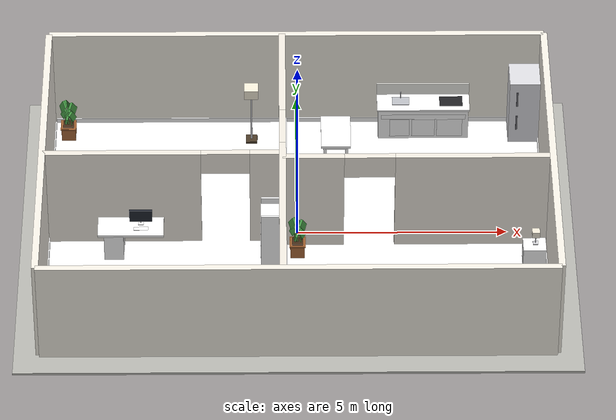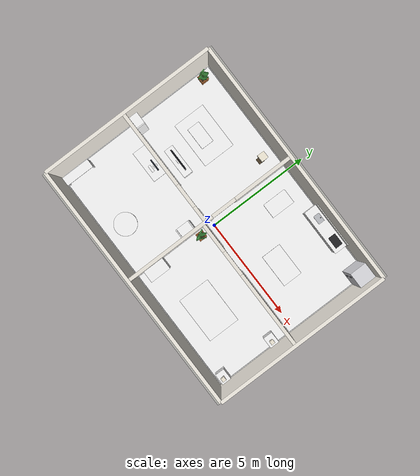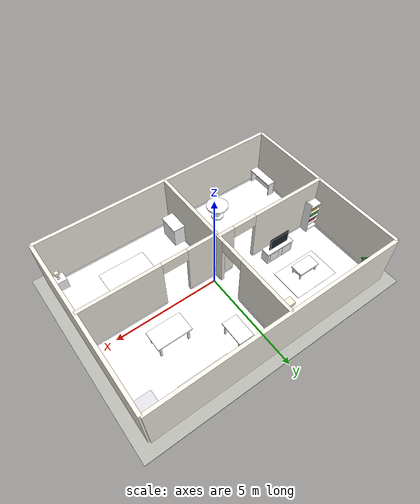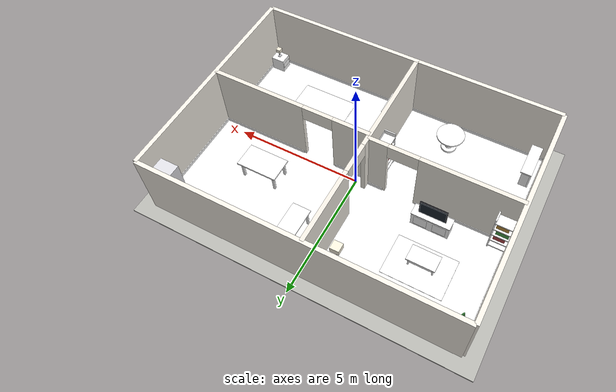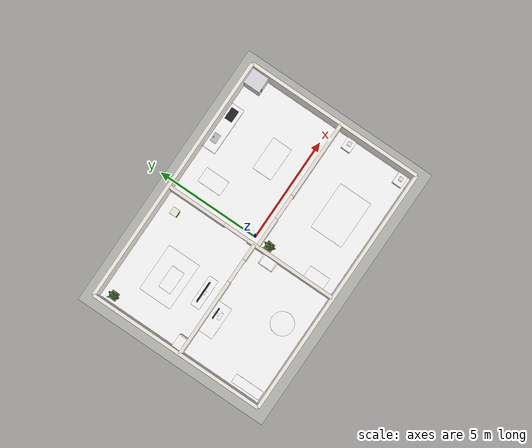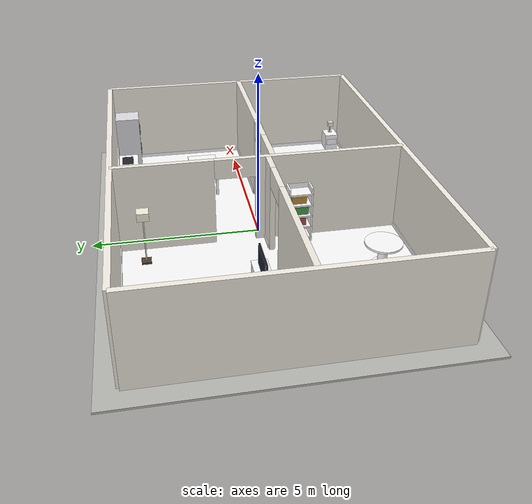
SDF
<sdf version="1.9">
 <world name="house2">
  <include><uri>https://fuel.gazebosim.org/1.0/OpenRobotics/models/Sun</uri></include>
  <gravity>0 0 -9.8</gravity>
  <light name="living_room_light" type="point">
   <pose>-3.40 2.20 2.35 0 0 0</pose>
   <diffuse>1.0 0.92 0.82 1</diffuse>
   <specular>0.18 0.16 0.14 1</specular>
   <attenuation>
    <range>8.0</range>
    <constant>0.6</constant>
    <linear>0.05</linear>
    <quadratic>0.01</quadratic>
   </attenuation>
  </light>
  <light name="kitchen_light" type="point">
   <pose>3.15 2.20 2.35 0 0 0</pose>
   <diffuse>1.0 0.94 0.86 1</diffuse>
   <specular>0.18 0.16 0.14 1</specular>
   <attenuation>
    <range>8.0</range>
    <constant>0.58</constant>
    <linear>0.05</linear>
    <quadratic>0.01</quadratic>
   </attenuation>
  </light>
  <light name="office_light" type="point">
   <pose>-3.60 -2.00 2.35 0 0 0</pose>
   <diffuse>0.96 0.97 1.0 1</diffuse>
   <specular>0.16 0.16 0.18 1</specular>
   <attenuation>
    <range>8.0</range>
    <constant>0.62</constant>
    <linear>0.05</linear>
    <quadratic>0.012</quadratic>
   </attenuation>
  </light>
  <light name="bedroom_light" type="point">
   <pose>3.60 -2.30 2.30 0 0 0</pose>
   <diffuse>0.98 0.92 0.84 1</diffuse>
   <specular>0.18 0.16 0.14 1</specular>
   <attenuation>
    <range>7.0</range>
    <constant>0.64</constant>
    <linear>0.05</linear>
    <quadratic>0.014</quadratic>
   </attenuation>
  </light>
  <include><uri>model://house_shell</uri><name>house_shell</name></include>
  <include><uri>model://rug</uri><name>living_rug</name><pose>-3.55 2.10 0 0 0 0</pose></include>
  <include>
   <uri>model://coffee_table</uri>
   <name>coffee_table_main</name>
   <pose>-3.60 1.95 0 0 0 0</pose>
  </include>
  <include><uri>model://tv_stand</uri><name>tv_stand_main</name><pose>-3.25 0.45 0 0 0 0</pose></include>
  <include><uri>model://bookshelf</uri><name>bookshelf_living</name><pose>-5.64 0.05 0 0 0 1.57</pose></include>
  <include><uri>model://floor_lamp</uri><name>living_lamp</name><pose>-1.10 3.45 0 0 0 0</pose></include>
  <include><uri>model://plant</uri><name>living_plant</name><pose>-5.58 3.62 0 0 0 0</pose></include>
  <include>
   <uri>model://kitchen_counter</uri>
   <name>kitchen_counter_main</name>
   <pose>3.10 3.82 0 0 0 0</pose>
  </include>
  <include><uri>model://fridge</uri><name>fridge_main</name><pose>5.55 3.75 0 0 0 4.71239</pose></include>
  <include><uri>model://table</uri><name>dining_table</name><pose>3.20 1.30 0 0 0 0</pose></include>
  <include>
   <uri>model://small_table</uri>
   <name>kitchen_side_table</name>
   <pose>0.95 2.85 0 0 0 1.57</pose>
  </include>
  <include><uri>model://desk</uri><name>desk_main</name><pose>-3.95 -0.58 0 0 0 0</pose></include>
  <include><uri>model://round_table</uri><name>meeting_table</name><pose>-2.45 -3.10 0 0 0 0</pose></include>
  <include>
   <uri>model://bookshelf</uri>
   <name>bookshelf_office</name>
   <pose>-0.62 -1.10 0 0 0 3.14159</pose>
  </include>
  <include><uri>model://u_desk</uri><name>desk_secondary</name><pose>-5.6 -3.4 0 0 0 0</pose></include>
  <include><uri>model://rug</uri><name>bedroom_rug</name><pose>2.90 -2.55 0 0 0 0</pose></include>
  <include>
   <uri>model://nightstand</uri>
   <name>nightstand_left</name>
   <pose>5.60 -1.10 0 0 0 3.14159</pose>
  </include>
  <include>
   <uri>model://nightstand</uri>
   <name>nightstand_right</name>
   <pose>5.60 -3.80 0 0 0 3.14159</pose>
  </include>
  <include><uri>model://dresser</uri><name>dresser_main</name><pose>-0.04 -3.20 0 0 0 1.57</pose></include>
  <include><uri>model://plant</uri><name>bedroom_plant</name><pose>0.00 -0.75 0 0 0 0</pose></include>
 </world>
</sdf>

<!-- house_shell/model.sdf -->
<sdf version="1.9">
  <model name="house_shell">
    <static>true</static>
    <link name="link">

      <visual name="base_slab_visual">
        <pose>0 0 -0.05 0 0 0</pose>
        <geometry><box><size>13.2 9.7 0.06</size></box></geometry>
        <material>
          <ambient>0.58 0.58 0.57 1</ambient>
          <diffuse>0.72 0.72 0.70 1</diffuse>
        </material>
      </visual>
      <collision name="base_slab_collision">
        <pose>0 0 -0.05 0 0 0</pose>
        <geometry><box><size>13.2 9.7 0.06</size></box></geometry>
      </collision>

      <visual name="floor_visual">
        <pose>0 0 -0.006 0 0 0</pose>
        <geometry><box><size>12.0 8.5 0.012</size></box></geometry>
        <material>
          <ambient>1 1 1 1</ambient>
          <diffuse>1 1 1 1</diffuse>
          <specular>0.05 0.05 0.05 1</specular>
          <pbr>
            <metal>
              <albedo_map>materials/textures/floor_albedo.jpg</albedo_map>
              <normal_map>materials/textures/floor_normal.jpg</normal_map>
              <roughness_map>materials/textures/floor_roughness.jpg</roughness_map>
              <metalness>0.0</metalness>
            </metal>
          </pbr>
        </material>
      </visual>
      <collision name="floor_collision">
        <pose>0 0 -0.006 0 0 0</pose>
        <geometry><box><size>12.0 8.5 0.012</size></box></geometry>
      </collision>

      <visual name="baseboard_west">
        <pose>-5.92 0 0.06 0 0 0</pose>
        <geometry><box><size>0.05 8.10 0.12</size></box></geometry>
        <material><ambient>1 1 1 1</ambient><diffuse>1 1 1 1</diffuse><specular>0.05 0.05 0.05 1</specular><pbr><metal><albedo_map>materials/textures/baseboard_albedo.jpg</albedo_map><normal_map>materials/textures/baseboard_normal.jpg</normal_map><roughness_map>materials/textures/baseboard_roughness.jpg</roughness_map><metalness>0.0</metalness></metal></pbr></material>
      </visual>
      <visual name="baseboard_east">
        <pose>5.92 0 0.06 0 0 0</pose>
        <geometry><box><size>0.05 8.10 0.12</size></box></geometry>
        <material><ambient>1 1 1 1</ambient><diffuse>1 1 1 1</diffuse><specular>0.05 0.05 0.05 1</specular><pbr><metal><albedo_map>materials/textures/baseboard_albedo.jpg</albedo_map><normal_map>materials/textures/baseboard_normal.jpg</normal_map><roughness_map>materials/textures/baseboard_roughness.jpg</roughness_map><metalness>0.0</metalness></metal></pbr></material>
      </visual>
      <visual name="baseboard_north">
        <pose>0 4.17 0.06 0 0 0</pose>
        <geometry><box><size>11.80 0.05 0.12</size></box></geometry>
        <material><ambient>1 1 1 1</ambient><diffuse>1 1 1 1</diffuse><specular>0.05 0.05 0.05 1</specular><pbr><metal><albedo_map>materials/textures/baseboard_albedo.jpg</albedo_map><normal_map>materials/textures/baseboard_normal.jpg</normal_map><roughness_map>materials/textures/baseboard_roughness.jpg</roughness_map><metalness>0.0</metalness></metal></pbr></material>
      </visual>
      <visual name="baseboard_south">
        <pose>0 -4.17 0.06 0 0 0</pose>
        <geometry><box><size>11.80 0.05 0.12</size></box></geometry>
        <material><ambient>1 1 1 1</ambient><diffuse>1 1 1 1</diffuse><specular>0.05 0.05 0.05 1</specular><pbr><metal><albedo_map>materials/textures/baseboard_albedo.jpg</albedo_map><normal_map>materials/textures/baseboard_normal.jpg</normal_map><roughness_map>materials/textures/baseboard_roughness.jpg</roughness_map><metalness>0.0</metalness></metal></pbr></material>
      </visual>
      <visual name="baseboard_mid_lower">
        <pose>-0.27 -2.05 0.06 0 0 0</pose>
        <geometry><box><size>0.05 4.18 0.12</size></box></geometry>
        <material><ambient>1 1 1 1</ambient><diffuse>1 1 1 1</diffuse><specular>0.05 0.05 0.05 1</specular><pbr><metal><albedo_map>materials/textures/baseboard_albedo.jpg</albedo_map><normal_map>materials/textures/baseboard_normal.jpg</normal_map><roughness_map>materials/textures/baseboard_roughness.jpg</roughness_map><metalness>0.0</metalness></metal></pbr></material>
      </visual>
      <visual name="baseboard_mid_upper">
        <pose>-0.27 2.80 0.06 0 0 0</pose>
        <geometry><box><size>0.05 2.68 0.12</size></box></geometry>
        <material><ambient>1 1 1 1</ambient><diffuse>1 1 1 1</diffuse><specular>0.05 0.05 0.05 1</specular><pbr><metal><albedo_map>materials/textures/baseboard_albedo.jpg</albedo_map><normal_map>materials/textures/baseboard_normal.jpg</normal_map><roughness_map>materials/textures/baseboard_roughness.jpg</roughness_map><metalness>0.0</metalness></metal></pbr></material>
      </visual>
      <visual name="baseboard_left_divider_a">
        <pose>-4.14 -0.12 0.06 0 0 0</pose>
        <geometry><box><size>3.55 0.05 0.12</size></box></geometry>
        <material><ambient>1 1 1 1</ambient><diffuse>1 1 1 1</diffuse><specular>0.05 0.05 0.05 1</specular><pbr><metal><albedo_map>materials/textures/baseboard_albedo.jpg</albedo_map><normal_map>materials/textures/baseboard_normal.jpg</normal_map><roughness_map>materials/textures/baseboard_roughness.jpg</roughness_map><metalness>0.0</metalness></metal></pbr></material>
      </visual>
      <visual name="baseboard_left_divider_b">
        <pose>-0.74 -0.12 0.06 0 0 0</pose>
        <geometry><box><size>0.60 0.05 0.12</size></box></geometry>
        <material><ambient>1 1 1 1</ambient><diffuse>1 1 1 1</diffuse><specular>0.05 0.05 0.05 1</specular><pbr><metal><albedo_map>materials/textures/baseboard_albedo.jpg</albedo_map><normal_map>materials/textures/baseboard_normal.jpg</normal_map><roughness_map>materials/textures/baseboard_roughness.jpg</roughness_map><metalness>0.0</metalness></metal></pbr></material>
      </visual>
      <visual name="baseboard_right_divider_a">
        <pose>0.38 -0.27 0.06 0 0 0</pose>
        <geometry><box><size>1.28 0.05 0.12</size></box></geometry>
        <material><ambient>1 1 1 1</ambient><diffuse>1 1 1 1</diffuse><specular>0.05 0.05 0.05 1</specular><pbr><metal><albedo_map>materials/textures/baseboard_albedo.jpg</albedo_map><normal_map>materials/textures/baseboard_normal.jpg</normal_map><roughness_map>materials/textures/baseboard_roughness.jpg</roughness_map><metalness>0.0</metalness></metal></pbr></material>
      </visual>
      <visual name="baseboard_right_divider_b">
        <pose>4.15 -0.27 0.06 0 0 0</pose>
        <geometry><box><size>3.54 0.05 0.12</size></box></geometry>
        <material><ambient>1 1 1 1</ambient><diffuse>1 1 1 1</diffuse><specular>0.05 0.05 0.05 1</specular><pbr><metal><albedo_map>materials/textures/baseboard_albedo.jpg</albedo_map><normal_map>materials/textures/baseboard_normal.jpg</normal_map><roughness_map>materials/textures/baseboard_roughness.jpg</roughness_map><metalness>0.0</metalness></metal></pbr></material>
      </visual>

      <!-- outer walls -->
      <collision name="wall_west">
        <pose>-6.0 0.0 1.35 0 0 0</pose>
        <geometry><box><size>0.16 8.5 2.7</size></box></geometry>
      </collision>
      <visual name="wall_west_visual">
        <pose>-6.0 0.0 1.35 0 0 0</pose>
        <geometry><box><size>0.16 8.5 2.7</size></box></geometry>
        <material><ambient>0.90 0.88 0.84 1</ambient><diffuse>0.97 0.95 0.91 1</diffuse></material>
      </visual>

      <collision name="wall_east">
        <pose>6.0 0.0 1.35 0 0 0</pose>
        <geometry><box><size>0.16 8.5 2.7</size></box></geometry>
      </collision>
      <visual name="wall_east_visual">
        <pose>6.0 0.0 1.35 0 0 0</pose>
        <geometry><box><size>0.16 8.5 2.7</size></box></geometry>
        <material><ambient>0.90 0.88 0.84 1</ambient><diffuse>0.97 0.95 0.91 1</diffuse></material>
      </visual>

      <collision name="wall_north">
        <pose>0.0 4.25 1.35 0 0 0</pose>
        <geometry><box><size>12.0 0.16 2.7</size></box></geometry>
      </collision>
      <visual name="wall_north_visual">
        <pose>0.0 4.25 1.35 0 0 0</pose>
        <geometry><box><size>12.0 0.16 2.7</size></box></geometry>
        <material><ambient>0.90 0.88 0.84 1</ambient><diffuse>0.97 0.95 0.91 1</diffuse></material>
      </visual>

      <collision name="wall_south">
        <pose>0.0 -4.25 1.35 0 0 0</pose>
        <geometry><box><size>12.0 0.16 2.7</size></box></geometry>
      </collision>
      <visual name="wall_south_visual">
        <pose>0.0 -4.25 1.35 0 0 0</pose>
        <geometry><box><size>12.0 0.16 2.7</size></box></geometry>
        <material><ambient>0.90 0.88 0.84 1</ambient><diffuse>0.97 0.95 0.91 1</diffuse></material>
      </visual>

      <!-- center hall wall -->
      <collision name="mid_wall_bottom">
        <pose>-0.35 -2.05 1.35 0 0 0</pose>
        <geometry><box><size>0.16 4.40 2.7</size></box></geometry>
      </collision>
      <visual name="mid_wall_bottom_visual">
        <pose>-0.35 -2.05 1.35 0 0 0</pose>
        <geometry><box><size>0.16 4.40 2.7</size></box></geometry>
        <material><ambient>0.88 0.86 0.82 1</ambient><diffuse>0.95 0.93 0.89 1</diffuse></material>
      </visual>

      <collision name="mid_wall_top">
        <pose>-0.35 2.80 1.35 0 0 0</pose>
        <geometry><box><size>0.16 2.90 2.7</size></box></geometry>
      </collision>
      <visual name="mid_wall_top_visual">
        <pose>-0.35 2.80 1.35 0 0 0</pose>
        <geometry><box><size>0.16 2.90 2.7</size></box></geometry>
        <material><ambient>0.88 0.86 0.82 1</ambient><diffuse>0.95 0.93 0.89 1</diffuse></material>
      </visual>

      <collision name="mid_door_header">
        <pose>-0.35 0.75 2.40 0 0 0</pose>
        <geometry><box><size>0.16 1.20 0.60</size></box></geometry>
      </collision>
      <visual name="mid_door_header_visual">
        <pose>-0.35 0.75 2.40 0 0 0</pose>
        <geometry><box><size>0.16 1.20 0.60</size></box></geometry>
        <material><ambient>0.88 0.86 0.82 1</ambient><diffuse>0.95 0.93 0.89 1</diffuse></material>
      </visual>

      <!-- left-side room divider -->
      <collision name="left_divider_left">
        <pose>-4.1375 -0.20 1.35 0 0 0</pose>
        <geometry><box><size>3.725 0.16 2.7</size></box></geometry>
      </collision>
      <visual name="left_divider_left_visual">
        <pose>-4.1375 -0.20 1.35 0 0 0</pose>
        <geometry><box><size>3.725 0.16 2.7</size></box></geometry>
        <material><ambient>0.88 0.86 0.82 1</ambient><diffuse>0.95 0.93 0.89 1</diffuse></material>
      </visual>

      <collision name="left_divider_right">
        <pose>-0.7375 -0.20 1.35 0 0 0</pose>
        <geometry><box><size>0.775 0.16 2.7</size></box></geometry>
      </collision>
      <visual name="left_divider_right_visual">
        <pose>-0.7375 -0.20 1.35 0 0 0</pose>
        <geometry><box><size>0.775 0.16 2.7</size></box></geometry>
        <material><ambient>0.88 0.86 0.82 1</ambient><diffuse>0.95 0.93 0.89 1</diffuse></material>
      </visual>

      <collision name="left_door_header">
        <pose>-1.70 -0.20 2.40 0 0 0</pose>
        <geometry><box><size>1.15 0.16 0.60</size></box></geometry>
      </collision>
      <visual name="left_door_header_visual">
        <pose>-1.70 -0.20 2.40 0 0 0</pose>
        <geometry><box><size>1.15 0.16 0.60</size></box></geometry>
        <material><ambient>0.88 0.86 0.82 1</ambient><diffuse>0.95 0.93 0.89 1</diffuse></material>
      </visual>

      <!-- bedroom divider -->
      <collision name="right_divider_left">
        <pose>0.375 -0.35 1.35 0 0 0</pose>
        <geometry><box><size>1.45 0.16 2.7</size></box></geometry>
      </collision>
      <visual name="right_divider_left_visual">
        <pose>0.375 -0.35 1.35 0 0 0</pose>
        <geometry><box><size>1.45 0.16 2.7</size></box></geometry>
        <material><ambient>0.88 0.86 0.82 1</ambient><diffuse>0.95 0.93 0.89 1</diffuse></material>
      </visual>

      <collision name="right_divider_right">
        <pose>4.15 -0.35 1.35 0 0 0</pose>
        <geometry><box><size>3.70 0.16 2.7</size></box></geometry>
      </collision>
      <visual name="right_divider_right_visual">
        <pose>4.15 -0.35 1.35 0 0 0</pose>
        <geometry><box><size>3.70 0.16 2.7</size></box></geometry>
        <material><ambient>0.88 0.86 0.82 1</ambient><diffuse>0.95 0.93 0.89 1</diffuse></material>
      </visual>

      <collision name="right_door_header">
        <pose>1.70 -0.35 2.40 0 0 0</pose>
        <geometry><box><size>1.20 0.16 0.60</size></box></geometry>
      </collision>
      <visual name="right_door_header_visual">
        <pose>1.70 -0.35 2.40 0 0 0</pose>
        <geometry><box><size>1.20 0.16 0.60</size></box></geometry>
        <material><ambient>0.88 0.86 0.82 1</ambient><diffuse>0.95 0.93 0.89 1</diffuse></material>
      </visual>

    </link>
  </model>
</sdf>

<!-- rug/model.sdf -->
<sdf version="1.9">
  <model name="rug">
    <static>true</static>
    <link name="body">

      <visual name="rug_base">
        <pose>0 0 0.005 0 0 0</pose>
        <geometry><box><size>2.30 1.60 0.01</size></box></geometry>
        <material>
          <ambient>1 1 1 1</ambient>
          <diffuse>1 1 1 1</diffuse>
          <specular>0.01 0.01 0.01 1</specular>
          <pbr>
            <metal>
              <albedo_map>materials/textures/carpet_albedo.jpg</albedo_map>
              <normal_map>materials/textures/carpet_normal.jpg</normal_map>
              <roughness_map>materials/textures/carpet_roughness.jpg</roughness_map>
              <metalness>0.0</metalness>
            </metal>
          </pbr>
        </material>
      </visual>
    </link>
  </model>
</sdf>

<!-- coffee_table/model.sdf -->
<sdf version="1.9">
  <model name="coffee_table">
    <static>true</static>
    <link name="body">

      <collision name="top_collision">
        <pose>0 0 0.42 0 0 0</pose>
        <geometry><box><size>1.08 0.62 0.06</size></box></geometry>
      </collision>
      <visual name="top_visual">
        <pose>0 0 0.42 0 0 0</pose>
        <geometry><box><size>1.08 0.62 0.06</size></box></geometry>
        <material>
          <ambient>1 1 1 1</ambient>
          <diffuse>1 1 1 1</diffuse>
          <specular>0.05 0.05 0.05 1</specular>
          <pbr>
            <metal>
              <albedo_map>materials/textures/wood_albedo.png</albedo_map>
              <normal_map>materials/textures/wood_normal.png</normal_map>
              <roughness_map>materials/textures/wood_roughness.png</roughness_map>
              <metalness>0.0</metalness>
            </metal>
          </pbr>
        </material>
      </visual>

      <collision name="shelf_collision">
        <pose>0 0 0.17 0 0 0</pose>
        <geometry><box><size>0.90 0.46 0.035</size></box></geometry>
      </collision>
      <visual name="shelf_visual">
        <pose>0 0 0.17 0 0 0</pose>
        <geometry><box><size>0.90 0.46 0.035</size></box></geometry>
        <material>
          <ambient>1 1 1 1</ambient>
          <diffuse>1 1 1 1</diffuse>
          <specular>0.05 0.05 0.05 1</specular>
          <pbr>
            <metal>
              <albedo_map>materials/textures/wood_albedo.png</albedo_map>
              <normal_map>materials/textures/wood_normal.png</normal_map>
              <roughness_map>materials/textures/wood_roughness.png</roughness_map>
              <metalness>0.0</metalness>
            </metal>
          </pbr>
        </material>
      </visual>

      <collision name="leg_fl">
        <pose>0.45 0.23 0.21 0 0 0</pose>
        <geometry><box><size>0.055 0.055 0.43</size></box></geometry>
      </collision>
      <collision name="leg_fr">
        <pose>0.45 -0.23 0.21 0 0 0</pose>
        <geometry><box><size>0.055 0.055 0.43</size></box></geometry>
      </collision>
      <collision name="leg_bl">
        <pose>-0.45 0.23 0.21 0 0 0</pose>
        <geometry><box><size>0.055 0.055 0.43</size></box></geometry>
      </collision>
      <collision name="leg_br">
        <pose>-0.45 -0.23 0.21 0 0 0</pose>
        <geometry><box><size>0.055 0.055 0.43</size></box></geometry>
      </collision>

      <visual name="leg_fl_visual">
        <pose>0.45 0.23 0.21 0 0 0</pose>
        <geometry><box><size>0.055 0.055 0.43</size></box></geometry>
        <material><ambient>1 1 1 1</ambient><diffuse>1 1 1 1</diffuse><specular>0.05 0.05 0.05 1</specular><pbr><metal><albedo_map>materials/textures/wood_albedo.png</albedo_map><normal_map>materials/textures/wood_normal.png</normal_map><roughness_map>materials/textures/wood_roughness.png</roughness_map><metalness>0.0</metalness></metal></pbr></material>
      </visual>
      <visual name="leg_fr_visual">
        <pose>0.45 -0.23 0.21 0 0 0</pose>
        <geometry><box><size>0.055 0.055 0.43</size></box></geometry>
        <material><ambient>1 1 1 1</ambient><diffuse>1 1 1 1</diffuse><specular>0.05 0.05 0.05 1</specular><pbr><metal><albedo_map>materials/textures/wood_albedo.png</albedo_map><normal_map>materials/textures/wood_normal.png</normal_map><roughness_map>materials/textures/wood_roughness.png</roughness_map><metalness>0.0</metalness></metal></pbr></material>
      </visual>
      <visual name="leg_bl_visual">
        <pose>-0.45 0.23 0.21 0 0 0</pose>
        <geometry><box><size>0.055 0.055 0.43</size></box></geometry>
        <material><ambient>1 1 1 1</ambient><diffuse>1 1 1 1</diffuse><specular>0.05 0.05 0.05 1</specular><pbr><metal><albedo_map>materials/textures/wood_albedo.png</albedo_map><normal_map>materials/textures/wood_normal.png</normal_map><roughness_map>materials/textures/wood_roughness.png</roughness_map><metalness>0.0</metalness></metal></pbr></material>
      </visual>
      <visual name="leg_br_visual">
        <pose>-0.45 -0.23 0.21 0 0 0</pose>
        <geometry><box><size>0.055 0.055 0.43</size></box></geometry>
        <material><ambient>1 1 1 1</ambient><diffuse>1 1 1 1</diffuse><specular>0.05 0.05 0.05 1</specular><pbr><metal><albedo_map>materials/textures/wood_albedo.png</albedo_map><normal_map>materials/textures/wood_normal.png</normal_map><roughness_map>materials/textures/wood_roughness.png</roughness_map><metalness>0.0</metalness></metal></pbr></material>
      </visual>

    </link>
  </model>
</sdf>

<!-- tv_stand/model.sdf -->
<sdf version="1.9">
  <model name="tv_stand">
    <static>true</static>
    <link name="body">

      <collision name="cabinet_collision">
        <pose>0 0 0.31 0 0 0</pose>
        <geometry><box><size>1.44 0.44 0.64</size></box></geometry>
      </collision>
      <collision name="top_slab_collision">
        <pose>0 0 0.63 0 0 0</pose>
        <geometry><box><size>1.48 0.46 0.04</size></box></geometry>
      </collision>
      <collision name="center_shelf_collision">
        <pose>0 0 0.28 0 0 0</pose>
        <geometry><box><size>0.34 0.36 0.03</size></box></geometry>
      </collision>
      <collision name="left_door_collision">
        <pose>-0.36 0.22 0.33 0 0 0</pose>
        <geometry><box><size>0.50 0.03 0.48</size></box></geometry>
      </collision>
      <collision name="right_door_collision">
        <pose>0.36 0.22 0.33 0 0 0</pose>
        <geometry><box><size>0.50 0.03 0.48</size></box></geometry>
      </collision>
      <collision name="tv_collision">
        <pose>0 0.03 1.00 0 0 0</pose>
        <geometry><box><size>1.04 0.05 0.64</size></box></geometry>
      </collision>
      <collision name="tv_base_collision">
        <pose>0 0 0.76 0 0 0</pose>
        <geometry><box><size>0.20 0.12 0.04</size></box></geometry>
      </collision>
      <visual name="cabinet_visual">
        <pose>0 0 0.31 0 0 0</pose>
        <geometry><box><size>1.44 0.44 0.64</size></box></geometry>
        <material>
          <ambient>1 1 1 1</ambient>
          <diffuse>1 1 1 1</diffuse>
          <specular>0.05 0.05 0.05 1</specular>
          <pbr>
            <metal>
              <albedo_map>materials/textures/wood_albedo.jpg</albedo_map>
              <normal_map>materials/textures/wood_normal.jpg</normal_map>
              <roughness_map>materials/textures/wood_roughness.jpg</roughness_map>
              <metalness>0.0</metalness>
            </metal>
          </pbr>
        </material>
      </visual>

      <visual name="top_slab">
        <pose>0 0 0.63 0 0 0</pose>
        <geometry><box><size>1.48 0.46 0.04</size></box></geometry>
        <material><ambient>1 1 1 1</ambient><diffuse>1 1 1 1</diffuse><specular>0.05 0.05 0.05 1</specular><pbr><metal><albedo_map>materials/textures/wood_albedo.jpg</albedo_map><normal_map>materials/textures/wood_normal.jpg</normal_map><roughness_map>materials/textures/wood_roughness.jpg</roughness_map><metalness>0.0</metalness></metal></pbr></material>
      </visual>

      <visual name="left_door">
        <pose>-0.36 0.22 0.33 0 0 0</pose>
        <geometry><box><size>0.50 0.03 0.48</size></box></geometry>
        <material><ambient>1 1 1 1</ambient><diffuse>1 1 1 1</diffuse><specular>0.05 0.05 0.05 1</specular><pbr><metal><albedo_map>materials/textures/wood_albedo.jpg</albedo_map><normal_map>materials/textures/wood_normal.jpg</normal_map><roughness_map>materials/textures/wood_roughness.jpg</roughness_map><metalness>0.0</metalness></metal></pbr></material>
      </visual>
      <visual name="right_door">
        <pose>0.36 0.22 0.33 0 0 0</pose>
        <geometry><box><size>0.50 0.03 0.48</size></box></geometry>
        <material><ambient>1 1 1 1</ambient><diffuse>1 1 1 1</diffuse><specular>0.05 0.05 0.05 1</specular><pbr><metal><albedo_map>materials/textures/wood_albedo.jpg</albedo_map><normal_map>materials/textures/wood_normal.jpg</normal_map><roughness_map>materials/textures/wood_roughness.jpg</roughness_map><metalness>0.0</metalness></metal></pbr></material>
      </visual>
      <visual name="center_shelf">
        <pose>0 0 0.28 0 0 0</pose>
        <geometry><box><size>0.34 0.36 0.03</size></box></geometry>
        <material><ambient>1 1 1 1</ambient><diffuse>1 1 1 1</diffuse><specular>0.05 0.05 0.05 1</specular><pbr><metal><albedo_map>materials/textures/wood_albedo.jpg</albedo_map><normal_map>materials/textures/wood_normal.jpg</normal_map><roughness_map>materials/textures/wood_roughness.jpg</roughness_map><metalness>0.0</metalness></metal></pbr></material>
      </visual>

      <visual name="tv_frame">
        <pose>0 0.03 1.00 0 0 0</pose>
        <geometry><box><size>1.04 0.05 0.64</size></box></geometry>
        <material><ambient>0.05 0.05 0.06 1</ambient><diffuse>0.10 0.10 0.12 1</diffuse></material>
      </visual>
      <visual name="tv_screen">
        <pose>0 0.06 1.00 0 0 0</pose>
        <geometry><box><size>0.96 0.02 0.56</size></box></geometry>
        <material><ambient>0.05 0.07 0.09 1</ambient><diffuse>0.10 0.14 0.18 1</diffuse></material>
      </visual>
      <visual name="tv_base">
        <pose>0 0 0.76 0 0 0</pose>
        <geometry><box><size>0.20 0.12 0.04</size></box></geometry>
        <material><ambient>1 1 1 1</ambient><diffuse>1 1 1 1</diffuse><specular>0.12 0.12 0.12 1</specular><pbr><metal><albedo_map>materials/textures/metal_albedo.jpg</albedo_map><normal_map>materials/textures/metal_normal.jpg</normal_map><roughness_map>materials/textures/metal_roughness.jpg</roughness_map><metalness_map>materials/textures/metal_metalness.jpg</metalness_map></metal></pbr></material>
      </visual>

    </link>
  </model>
</sdf>

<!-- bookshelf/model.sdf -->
<sdf version="1.9">
  <model name="bookshelf">
    <static>true</static>
    <link name="body">

      <collision name="left_side_collision">
        <pose>0 0.33 0.88 0 0 0</pose>
        <geometry><box><size>0.48 0.05 1.78</size></box></geometry>
      </collision>
      <collision name="right_side_collision">
        <pose>0 -0.33 0.88 0 0 0</pose>
        <geometry><box><size>0.48 0.05 1.78</size></box></geometry>
      </collision>
      <collision name="back_collision">
        <pose>-0.21 0 0.88 0 0 0</pose>
        <geometry><box><size>0.05 0.68 1.78</size></box></geometry>
      </collision>

      <collision name="bottom_shelf_collision">
        <pose>0.03 0 0.14 0 0 0</pose>
        <geometry><box><size>0.44 0.68 0.05</size></box></geometry>
      </collision>
      <collision name="mid1_shelf_collision">
        <pose>0.03 0 0.50 0 0 0</pose>
        <geometry><box><size>0.44 0.68 0.05</size></box></geometry>
      </collision>
      <collision name="mid2_shelf_collision">
        <pose>0.03 0 0.86 0 0 0</pose>
        <geometry><box><size>0.44 0.68 0.05</size></box></geometry>
      </collision>
      <collision name="mid3_shelf_collision">
        <pose>0.03 0 1.22 0 0 0</pose>
        <geometry><box><size>0.44 0.68 0.05</size></box></geometry>
      </collision>
      <collision name="top_shelf_collision">
        <pose>0.03 0 1.58 0 0 0</pose>
        <geometry><box><size>0.44 0.68 0.05</size></box></geometry>
      </collision>

      <collision name="books_2_collision">
        <pose>0.09 -0.03 0.66 0 0 0</pose>
        <geometry><box><size>0.20 0.42 0.24</size></box></geometry>
      </collision>
      <collision name="books_3_collision">
        <pose>0.09 0.02 1.02 0 0 0</pose>
        <geometry><box><size>0.20 0.46 0.24</size></box></geometry>
      </collision>
      <collision name="books_4_collision">
        <pose>0.09 -0.04 1.38 0 0 0</pose>
        <geometry><box><size>0.20 0.44 0.22</size></box></geometry>
      </collision>

      <visual name="left_side_visual">
        <pose>0 0.33 0.88 0 0 0</pose>
        <geometry><box><size>0.48 0.05 1.78</size></box></geometry>
        <material><ambient>1 1 1 1</ambient><diffuse>1 1 1 1</diffuse><specular>0.05 0.05 0.05 1</specular><pbr><metal><albedo_map>materials/textures/wood_albedo.jpg</albedo_map><normal_map>materials/textures/wood_normal.jpg</normal_map><roughness_map>materials/textures/wood_roughness.jpg</roughness_map><metalness>0.0</metalness></metal></pbr></material>
      </visual>
      <visual name="right_side_visual">
        <pose>0 -0.33 0.88 0 0 0</pose>
        <geometry><box><size>0.48 0.05 1.78</size></box></geometry>
        <material><ambient>1 1 1 1</ambient><diffuse>1 1 1 1</diffuse><specular>0.05 0.05 0.05 1</specular><pbr><metal><albedo_map>materials/textures/wood_albedo.jpg</albedo_map><normal_map>materials/textures/wood_normal.jpg</normal_map><roughness_map>materials/textures/wood_roughness.jpg</roughness_map><metalness>0.0</metalness></metal></pbr></material>
      </visual>
      <visual name="back_visual">
        <pose>-0.21 0 0.88 0 0 0</pose>
        <geometry><box><size>0.05 0.68 1.78</size></box></geometry>
        <material><ambient>1 1 1 1</ambient><diffuse>1 1 1 1</diffuse><specular>0.05 0.05 0.05 1</specular><pbr><metal><albedo_map>materials/textures/wood_albedo.jpg</albedo_map><normal_map>materials/textures/wood_normal.jpg</normal_map><roughness_map>materials/textures/wood_roughness.jpg</roughness_map><metalness>0.0</metalness></metal></pbr></material>
      </visual>

      <visual name="bottom_shelf_visual">
        <pose>0.03 0 0.14 0 0 0</pose>
        <geometry><box><size>0.44 0.68 0.05</size></box></geometry>
        <material><ambient>1 1 1 1</ambient><diffuse>1 1 1 1</diffuse><specular>0.05 0.05 0.05 1</specular><pbr><metal><albedo_map>materials/textures/wood_albedo.jpg</albedo_map><normal_map>materials/textures/wood_normal.jpg</normal_map><roughness_map>materials/textures/wood_roughness.jpg</roughness_map><metalness>0.0</metalness></metal></pbr></material>
      </visual>
      <visual name="mid1_shelf_visual">
        <pose>0.03 0 0.50 0 0 0</pose>
        <geometry><box><size>0.44 0.68 0.05</size></box></geometry>
        <material><ambient>1 1 1 1</ambient><diffuse>1 1 1 1</diffuse><specular>0.05 0.05 0.05 1</specular><pbr><metal><albedo_map>materials/textures/wood_albedo.jpg</albedo_map><normal_map>materials/textures/wood_normal.jpg</normal_map><roughness_map>materials/textures/wood_roughness.jpg</roughness_map><metalness>0.0</metalness></metal></pbr></material>
      </visual>
      <visual name="mid2_shelf_visual">
        <pose>0.03 0 0.86 0 0 0</pose>
        <geometry><box><size>0.44 0.68 0.05</size></box></geometry>
        <material><ambient>1 1 1 1</ambient><diffuse>1 1 1 1</diffuse><specular>0.05 0.05 0.05 1</specular><pbr><metal><albedo_map>materials/textures/wood_albedo.jpg</albedo_map><normal_map>materials/textures/wood_normal.jpg</normal_map><roughness_map>materials/textures/wood_roughness.jpg</roughness_map><metalness>0.0</metalness></metal></pbr></material>
      </visual>
      <visual name="mid3_shelf_visual">
        <pose>0.03 0 1.22 0 0 0</pose>
        <geometry><box><size>0.44 0.68 0.05</size></box></geometry>
        <material><ambient>1 1 1 1</ambient><diffuse>1 1 1 1</diffuse><specular>0.05 0.05 0.05 1</specular><pbr><metal><albedo_map>materials/textures/wood_albedo.jpg</albedo_map><normal_map>materials/textures/wood_normal.jpg</normal_map><roughness_map>materials/textures/wood_roughness.jpg</roughness_map><metalness>0.0</metalness></metal></pbr></material>
      </visual>
      <visual name="top_shelf_visual">
        <pose>0.03 0 1.58 0 0 0</pose>
        <geometry><box><size>0.44 0.68 0.05</size></box></geometry>
        <material><ambient>1 1 1 1</ambient><diffuse>1 1 1 1</diffuse><specular>0.05 0.05 0.05 1</specular><pbr><metal><albedo_map>materials/textures/wood_albedo.jpg</albedo_map><normal_map>materials/textures/wood_normal.jpg</normal_map><roughness_map>materials/textures/wood_roughness.jpg</roughness_map><metalness>0.0</metalness></metal></pbr></material>
      </visual>

      <!-- simple books -->
      <visual name="books_2">
        <pose>0.09 -0.03 0.66 0 0 0</pose>
        <geometry><box><size>0.20 0.42 0.24</size></box></geometry>
        <material><ambient>0.45 0.18 0.18 1</ambient><diffuse>0.70 0.28 0.28 1</diffuse></material>
      </visual>
      <visual name="books_3">
        <pose>0.09 0.02 1.02 0 0 0</pose>
        <geometry><box><size>0.20 0.46 0.24</size></box></geometry>
        <material><ambient>0.18 0.40 0.18 1</ambient><diffuse>0.28 0.62 0.28 1</diffuse></material>
      </visual>
      <visual name="books_4">
        <pose>0.09 -0.04 1.38 0 0 0</pose>
        <geometry><box><size>0.20 0.44 0.22</size></box></geometry>
        <material><ambient>0.48 0.36 0.14 1</ambient><diffuse>0.74 0.56 0.22 1</diffuse></material>
      </visual>

    </link>
  </model>
</sdf>

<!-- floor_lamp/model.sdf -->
<sdf version="1.9">
  <model name="floor_lamp">
    <static>true</static>
    <link name="body">

      <collision name="base_collision">
        <pose>0 0 0.03 0 0 0</pose>
        <geometry><box><size>0.28 0.28 0.06</size></box></geometry>
      </collision>
      <collision name="stem_collision">
        <pose>0 0 0.80 0 0 0</pose>
        <geometry><box><size>0.04 0.04 1.50</size></box></geometry>
      </collision>
      <collision name="shade_collision">
        <pose>0 0 1.55 0 0 0</pose>
        <geometry><box><size>0.34 0.34 0.24</size></box></geometry>
      </collision>
      <visual name="base_visual">
        <pose>0 0 0.03 0 0 0</pose>
        <geometry><box><size>0.28 0.28 0.06</size></box></geometry>
        <material>
          <ambient>0.20 0.16 0.11 1</ambient>
          <diffuse>0.30 0.24 0.16 1</diffuse>
        </material>
      </visual>

      <visual name="stem_visual">
        <pose>0 0 0.80 0 0 0</pose>
        <geometry><box><size>0.04 0.04 1.50</size></box></geometry>
        <material><ambient>0.62 0.62 0.63 1</ambient><diffuse>0.78 0.78 0.80 1</diffuse></material>
      </visual>
      <visual name="shade_visual">
        <pose>0 0 1.55 0 0 0</pose>
        <geometry><box><size>0.34 0.34 0.24</size></box></geometry>
        <material><ambient>0.92 0.89 0.80 1</ambient><diffuse>0.98 0.95 0.87 1</diffuse></material>
      </visual>

    </link>
  </model>
</sdf>

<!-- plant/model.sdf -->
<sdf version="1.9">
  <model name="plant">
    <static>true</static>
    <link name="body">

      <collision name="pot_collision">
        <pose>0 0 0.18 0 0 0</pose>
        <geometry><box><size>0.34 0.34 0.38</size></box></geometry>
      </collision>
      <collision name="pot_lip_collision">
        <pose>0 0 0.35 0 0 0</pose>
        <geometry><box><size>0.38 0.38 0.03</size></box></geometry>
      </collision>
      <collision name="stem_main_collision">
        <pose>0 0 0.64 0 0 0</pose>
        <geometry><box><size>0.04 0.04 0.52</size></box></geometry>
      </collision>
      <collision name="stem_left_collision">
        <pose>-0.06 0.02 0.58 0.18 0.14 0</pose>
        <geometry><box><size>0.03 0.03 0.34</size></box></geometry>
      </collision>
      <collision name="stem_right_collision">
        <pose>0.06 -0.02 0.58 -0.18 -0.14 0</pose>
        <geometry><box><size>0.03 0.03 0.34</size></box></geometry>
      </collision>
      <collision name="leaf_left_top_collision">
        <pose>-0.12 0.03 0.92 0.65 0 0.40</pose>
        <geometry><box><size>0.05 0.18 0.42</size></box></geometry>
      </collision>
      <collision name="leaf_right_top_collision">
        <pose>0.12 -0.03 0.92 0.65 0 -0.40</pose>
        <geometry><box><size>0.05 0.18 0.42</size></box></geometry>
      </collision>
      <collision name="leaf_front_top_collision">
        <pose>0 0.12 0.88 0.52 -0.34 0</pose>
        <geometry><box><size>0.05 0.16 0.36</size></box></geometry>
      </collision>
      <collision name="leaf_back_top_collision">
        <pose>0 -0.12 0.88 0.52 0.34 0</pose>
        <geometry><box><size>0.05 0.16 0.36</size></box></geometry>
      </collision>
      <collision name="leaf_left_low_collision">
        <pose>-0.10 0.06 0.68 0.48 0 0.62</pose>
        <geometry><box><size>0.05 0.15 0.30</size></box></geometry>
      </collision>
      <collision name="leaf_right_low_collision">
        <pose>0.10 -0.06 0.68 0.48 0 -0.62</pose>
        <geometry><box><size>0.05 0.15 0.30</size></box></geometry>
      </collision>
      <collision name="leaf_front_low_collision">
        <pose>0.03 0.11 0.62 0.42 -0.22 0.15</pose>
        <geometry><box><size>0.05 0.14 0.26</size></box></geometry>
      </collision>
      <collision name="leaf_back_low_collision">
        <pose>-0.03 -0.11 0.62 0.42 0.22 -0.15</pose>
        <geometry><box><size>0.05 0.14 0.26</size></box></geometry>
      </collision>
      <visual name="pot_visual">
        <pose>0 0 0.18 0 0 0</pose>
        <geometry><box><size>0.34 0.34 0.38</size></box></geometry>
        <material>
          <ambient>0.50 0.31 0.16 1</ambient>
          <diffuse>0.68 0.42 0.22 1</diffuse>
        </material>
      </visual>
      <visual name="pot_lip">
        <pose>0 0 0.35 0 0 0</pose>
        <geometry><box><size>0.38 0.38 0.03</size></box></geometry>
        <material><ambient>0.56 0.35 0.18 1</ambient><diffuse>0.74 0.46 0.25 1</diffuse></material>
      </visual>
      <visual name="soil_visual">
        <pose>0 0 0.38 0 0 0</pose>
        <geometry><box><size>0.26 0.26 0.03</size></box></geometry>
        <material><ambient>0.19 0.12 0.07 1</ambient><diffuse>0.28 0.18 0.10 1</diffuse></material>
      </visual>

      <visual name="stem_main">
        <pose>0 0 0.64 0 0 0</pose>
        <geometry><box><size>0.04 0.04 0.52</size></box></geometry>
        <material><ambient>0.22 0.33 0.15 1</ambient><diffuse>0.34 0.50 0.22 1</diffuse></material>
      </visual>
      <visual name="stem_left">
        <pose>-0.06 0.02 0.58 0.18 0.14 0</pose>
        <geometry><box><size>0.03 0.03 0.34</size></box></geometry>
        <material><ambient>0.22 0.33 0.15 1</ambient><diffuse>0.34 0.50 0.22 1</diffuse></material>
      </visual>
      <visual name="stem_right">
        <pose>0.06 -0.02 0.58 -0.18 -0.14 0</pose>
        <geometry><box><size>0.03 0.03 0.34</size></box></geometry>
        <material><ambient>0.22 0.33 0.15 1</ambient><diffuse>0.34 0.50 0.22 1</diffuse></material>
      </visual>

      <visual name="leaf_left_top">
        <pose>-0.12 0.03 0.92 0.65 0 0.40</pose>
        <geometry><box><size>0.05 0.18 0.42</size></box></geometry>
        <material><ambient>0.18 0.40 0.18 1</ambient><diffuse>0.28 0.62 0.28 1</diffuse></material>
      </visual>
      <visual name="leaf_right_top">
        <pose>0.12 -0.03 0.92 0.65 0 -0.40</pose>
        <geometry><box><size>0.05 0.18 0.42</size></box></geometry>
        <material><ambient>0.18 0.40 0.18 1</ambient><diffuse>0.28 0.62 0.28 1</diffuse></material>
      </visual>
      <visual name="leaf_front_top">
        <pose>0 0.12 0.88 0.52 -0.34 0</pose>
        <geometry><box><size>0.05 0.16 0.36</size></box></geometry>
        <material><ambient>0.18 0.40 0.18 1</ambient><diffuse>0.28 0.62 0.28 1</diffuse></material>
      </visual>
      <visual name="leaf_back_top">
        <pose>0 -0.12 0.88 0.52 0.34 0</pose>
        <geometry><box><size>0.05 0.16 0.36</size></box></geometry>
        <material><ambient>0.18 0.40 0.18 1</ambient><diffuse>0.28 0.62 0.28 1</diffuse></material>
      </visual>
      <visual name="leaf_left_low">
        <pose>-0.10 0.06 0.68 0.48 0 0.62</pose>
        <geometry><box><size>0.05 0.15 0.30</size></box></geometry>
        <material><ambient>0.18 0.40 0.18 1</ambient><diffuse>0.28 0.62 0.28 1</diffuse></material>
      </visual>
      <visual name="leaf_right_low">
        <pose>0.10 -0.06 0.68 0.48 0 -0.62</pose>
        <geometry><box><size>0.05 0.15 0.30</size></box></geometry>
        <material><ambient>0.18 0.40 0.18 1</ambient><diffuse>0.28 0.62 0.28 1</diffuse></material>
      </visual>
      <visual name="leaf_front_low">
        <pose>0.03 0.11 0.62 0.42 -0.22 0.15</pose>
        <geometry><box><size>0.05 0.14 0.26</size></box></geometry>
        <material><ambient>0.18 0.40 0.18 1</ambient><diffuse>0.28 0.62 0.28 1</diffuse></material>
      </visual>
      <visual name="leaf_back_low">
        <pose>-0.03 -0.11 0.62 0.42 0.22 -0.15</pose>
        <geometry><box><size>0.05 0.14 0.26</size></box></geometry>
        <material><ambient>0.18 0.40 0.18 1</ambient><diffuse>0.28 0.62 0.28 1</diffuse></material>
      </visual>

    </link>
  </model>
</sdf>

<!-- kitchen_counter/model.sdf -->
<sdf version="1.9">
  <model name="kitchen_counter">
    <static>true</static>
    <link name="body">

      <collision name="base_collision">
        <pose>0 0 0.43 0 0 0</pose>
        <geometry><box><size>2.20 0.62 0.86</size></box></geometry>
      </collision>
      <collision name="countertop_collision">
        <pose>0 0 0.88 0 0 0</pose>
        <geometry><box><size>2.26 0.68 0.04</size></box></geometry>
      </collision>
      <collision name="backsplash_collision">
        <pose>0 0.30 1.06 0 0 0</pose>
        <geometry><box><size>2.26 0.04 0.32</size></box></geometry>
      </collision>
      <collision name="sink_basin_collision">
        <pose>-0.55 0.02 0.89 0 0 0</pose>
        <geometry><box><size>0.42 0.30 0.03</size></box></geometry>
      </collision>
      <collision name="faucet_stem_collision">
        <pose>-0.55 0.10 1.03 0 0 0</pose>
        <geometry><box><size>0.03 0.03 0.18</size></box></geometry>
      </collision>
      <collision name="cooktop_collision">
        <pose>0.68 0.00 0.90 0 0 0</pose>
        <geometry><box><size>0.56 0.36 0.02</size></box></geometry>
      </collision>
      <collision name="drawer_strip_collision">
        <pose>0 -0.30 0.67 0 0 0</pose>
        <geometry><box><size>2.06 0.03 0.14</size></box></geometry>
      </collision>
      <collision name="cabinet_front_left_collision">
        <pose>-0.58 -0.30 0.33 0 0 0</pose>
        <geometry><box><size>0.48 0.03 0.52</size></box></geometry>
      </collision>
      <collision name="cabinet_front_center_collision">
        <pose>0.00 -0.30 0.33 0 0 0</pose>
        <geometry><box><size>0.56 0.03 0.52</size></box></geometry>
      </collision>
      <collision name="cabinet_front_right_collision">
        <pose>0.64 -0.30 0.33 0 0 0</pose>
        <geometry><box><size>0.62 0.03 0.52</size></box></geometry>
      </collision>
      <visual name="base_visual">
        <pose>0 0 0.43 0 0 0</pose>
        <geometry><box><size>2.20 0.62 0.86</size></box></geometry>
        <material>
          <ambient>1 1 1 1</ambient>
          <diffuse>1 1 1 1</diffuse>
          <specular>0.05 0.05 0.05 1</specular>
          <pbr>
            <metal>
              <albedo_map>materials/textures/wood_albedo.jpg</albedo_map>
              <normal_map>materials/textures/wood_normal.jpg</normal_map>
              <roughness_map>materials/textures/wood_roughness.jpg</roughness_map>
              <metalness>0.0</metalness>
            </metal>
          </pbr>
        </material>
      </visual>

      <visual name="countertop_visual">
        <pose>0 0 0.88 0 0 0</pose>
        <geometry><box><size>2.26 0.68 0.04</size></box></geometry>
        <material><ambient>1 1 1 1</ambient><diffuse>1 1 1 1</diffuse><specular>0.05 0.05 0.05 1</specular><pbr><metal><albedo_map>materials/textures/top_albedo.jpg</albedo_map><normal_map>materials/textures/top_normal.jpg</normal_map><roughness_map>materials/textures/top_roughness.jpg</roughness_map><metalness>0.0</metalness></metal></pbr></material>
      </visual>
      <visual name="backsplash_visual">
        <pose>0 0.30 1.06 0 0 0</pose>
        <geometry><box><size>2.26 0.04 0.32</size></box></geometry>
        <material><ambient>0.86 0.86 0.84 1</ambient><diffuse>0.96 0.96 0.94 1</diffuse></material>
      </visual>

      <visual name="sink_basin">
        <pose>-0.55 0.02 0.89 0 0 0</pose>
        <geometry><box><size>0.42 0.30 0.03</size></box></geometry>
        <material><ambient>0.55 0.56 0.58 1</ambient><diffuse>0.75 0.76 0.78 1</diffuse></material>
      </visual>
      <visual name="faucet_stem">
        <pose>-0.55 0.10 1.03 0 0 0</pose>
        <geometry><box><size>0.03 0.03 0.18</size></box></geometry>
        <material><ambient>0.45 0.45 0.46 1</ambient><diffuse>0.62 0.62 0.64 1</diffuse></material>
      </visual>
      <visual name="cooktop_visual">
        <pose>0.68 0.00 0.90 0 0 0</pose>
        <geometry><box><size>0.56 0.36 0.02</size></box></geometry>
        <material><ambient>0.08 0.08 0.09 1</ambient><diffuse>0.14 0.14 0.15 1</diffuse></material>
      </visual>

      <visual name="drawer_strip">
        <pose>0 -0.30 0.67 0 0 0</pose>
        <geometry><box><size>2.06 0.03 0.14</size></box></geometry>
        <material><ambient>1 1 1 1</ambient><diffuse>1 1 1 1</diffuse><specular>0.05 0.05 0.05 1</specular><pbr><metal><albedo_map>materials/textures/wood_albedo.jpg</albedo_map><normal_map>materials/textures/wood_normal.jpg</normal_map><roughness_map>materials/textures/wood_roughness.jpg</roughness_map><metalness>0.0</metalness></metal></pbr></material>
      </visual>
      <visual name="cabinet_front_left">
        <pose>-0.58 -0.30 0.33 0 0 0</pose>
        <geometry><box><size>0.48 0.03 0.52</size></box></geometry>
        <material><ambient>1 1 1 1</ambient><diffuse>1 1 1 1</diffuse><specular>0.05 0.05 0.05 1</specular><pbr><metal><albedo_map>materials/textures/wood_albedo.jpg</albedo_map><normal_map>materials/textures/wood_normal.jpg</normal_map><roughness_map>materials/textures/wood_roughness.jpg</roughness_map><metalness>0.0</metalness></metal></pbr></material>
      </visual>
      <visual name="cabinet_front_center">
        <pose>0.00 -0.30 0.33 0 0 0</pose>
        <geometry><box><size>0.56 0.03 0.52</size></box></geometry>
        <material><ambient>1 1 1 1</ambient><diffuse>1 1 1 1</diffuse><specular>0.05 0.05 0.05 1</specular><pbr><metal><albedo_map>materials/textures/wood_albedo.jpg</albedo_map><normal_map>materials/textures/wood_normal.jpg</normal_map><roughness_map>materials/textures/wood_roughness.jpg</roughness_map><metalness>0.0</metalness></metal></pbr></material>
      </visual>
      <visual name="cabinet_front_right">
        <pose>0.64 -0.30 0.33 0 0 0</pose>
        <geometry><box><size>0.62 0.03 0.52</size></box></geometry>
        <material><ambient>1 1 1 1</ambient><diffuse>1 1 1 1</diffuse><specular>0.05 0.05 0.05 1</specular><pbr><metal><albedo_map>materials/textures/wood_albedo.jpg</albedo_map><normal_map>materials/textures/wood_normal.jpg</normal_map><roughness_map>materials/textures/wood_roughness.jpg</roughness_map><metalness>0.0</metalness></metal></pbr></material>
      </visual>

    </link>
  </model>
</sdf>

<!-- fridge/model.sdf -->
<sdf version="1.9">
  <model name="fridge">
    <static>true</static>
    <link name="body">

      <collision name="main_collision">
        <pose>0 0 0.90 0 0 0</pose>
        <geometry><box><size>0.80 0.74 1.82</size></box></geometry>
      </collision>
      <collision name="top_door_handle_collision">
        <pose>0.41 -0.18 1.35 0 0 0</pose>
        <geometry><box><size>0.03 0.04 0.42</size></box></geometry>
      </collision>
      <collision name="bottom_door_handle_collision">
        <pose>0.41 -0.18 0.62 0 0 0</pose>
        <geometry><box><size>0.03 0.04 0.42</size></box></geometry>
      </collision>

      <visual name="main_visual">
        <pose>0 0 0.90 0 0 0</pose>
        <geometry><box><size>0.80 0.74 1.82</size></box></geometry>
        <material>
          <ambient>0.72 0.72 0.74 1</ambient>
          <diffuse>0.88 0.88 0.90 1</diffuse>
          <specular>0.18 0.18 0.18 1</specular>
        </material>
      </visual>

      <visual name="door_split">
        <pose>0.39 0 1.08 0 0 0</pose>
        <geometry><box><size>0.01 0.70 1.45</size></box></geometry>
        <material><ambient>0.55 0.55 0.56 1</ambient><diffuse>0.68 0.68 0.70 1</diffuse></material>
      </visual>

      <visual name="top_door_handle">
        <pose>0.41 -0.18 1.35 0 0 0</pose>
        <geometry><box><size>0.03 0.04 0.42</size></box></geometry>
        <material><ambient>0.25 0.25 0.27 1</ambient><diffuse>0.40 0.40 0.43 1</diffuse></material>
      </visual>
      <visual name="bottom_door_handle">
        <pose>0.41 -0.18 0.62 0 0 0</pose>
        <geometry><box><size>0.03 0.04 0.42</size></box></geometry>
        <material><ambient>0.25 0.25 0.27 1</ambient><diffuse>0.40 0.40 0.43 1</diffuse></material>
      </visual>

    </link>
  </model>
</sdf>

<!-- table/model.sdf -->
<sdf version="1.9">
  <model name="table">
    <static>true</static>
    <link name="body">

      <collision name="top_collision">
        <pose>0 0 0.75 0 0 0</pose>
        <geometry><box><size>1.60 0.95 0.07</size></box></geometry>
      </collision>
      <visual name="top_visual">
        <pose>0 0 0.75 0 0 0</pose>
        <geometry><box><size>1.60 0.95 0.07</size></box></geometry>
        <material>
          <ambient>1 1 1 1</ambient>
          <diffuse>1 1 1 1</diffuse>
          <specular>0.05 0.05 0.05 1</specular>
          <pbr>
            <metal>
              <albedo_map>materials/textures/wood_albedo.png</albedo_map>
              <normal_map>materials/textures/wood_normal.png</normal_map>
              <roughness_map>materials/textures/wood_roughness.png</roughness_map>
              <metalness>0.0</metalness>
            </metal>
          </pbr>
        </material>
      </visual>

      <collision name="apron_left">
        <pose>0 0.39 0.67 0 0 0</pose>
        <geometry><box><size>1.40 0.065 0.12</size></box></geometry>
      </collision>
      <collision name="apron_right">
        <pose>0 -0.39 0.67 0 0 0</pose>
        <geometry><box><size>1.40 0.065 0.12</size></box></geometry>
      </collision>
      <collision name="apron_front">
        <pose>0.66 0 0.67 0 0 0</pose>
        <geometry><box><size>0.065 0.74 0.12</size></box></geometry>
      </collision>
      <collision name="apron_back">
        <pose>-0.66 0 0.67 0 0 0</pose>
        <geometry><box><size>0.065 0.74 0.12</size></box></geometry>
      </collision>

      <visual name="apron_left_visual">
        <pose>0 0.39 0.67 0 0 0</pose>
        <geometry><box><size>1.40 0.065 0.12</size></box></geometry>
        <material><ambient>1 1 1 1</ambient><diffuse>1 1 1 1</diffuse><specular>0.05 0.05 0.05 1</specular><pbr><metal><albedo_map>materials/textures/wood_albedo.png</albedo_map><normal_map>materials/textures/wood_normal.png</normal_map><roughness_map>materials/textures/wood_roughness.png</roughness_map><metalness>0.0</metalness></metal></pbr></material>
      </visual>
      <visual name="apron_right_visual">
        <pose>0 -0.39 0.67 0 0 0</pose>
        <geometry><box><size>1.40 0.065 0.12</size></box></geometry>
        <material><ambient>1 1 1 1</ambient><diffuse>1 1 1 1</diffuse><specular>0.05 0.05 0.05 1</specular><pbr><metal><albedo_map>materials/textures/wood_albedo.png</albedo_map><normal_map>materials/textures/wood_normal.png</normal_map><roughness_map>materials/textures/wood_roughness.png</roughness_map><metalness>0.0</metalness></metal></pbr></material>
      </visual>
      <visual name="apron_front_visual">
        <pose>0.66 0 0.67 0 0 0</pose>
        <geometry><box><size>0.065 0.74 0.12</size></box></geometry>
        <material><ambient>1 1 1 1</ambient><diffuse>1 1 1 1</diffuse><specular>0.05 0.05 0.05 1</specular><pbr><metal><albedo_map>materials/textures/wood_albedo.png</albedo_map><normal_map>materials/textures/wood_normal.png</normal_map><roughness_map>materials/textures/wood_roughness.png</roughness_map><metalness>0.0</metalness></metal></pbr></material>
      </visual>
      <visual name="apron_back_visual">
        <pose>-0.66 0 0.67 0 0 0</pose>
        <geometry><box><size>0.065 0.74 0.12</size></box></geometry>
        <material><ambient>1 1 1 1</ambient><diffuse>1 1 1 1</diffuse><specular>0.05 0.05 0.05 1</specular><pbr><metal><albedo_map>materials/textures/wood_albedo.png</albedo_map><normal_map>materials/textures/wood_normal.png</normal_map><roughness_map>materials/textures/wood_roughness.png</roughness_map><metalness>0.0</metalness></metal></pbr></material>
      </visual>

      <collision name="leg_fl">
        <pose>0.66 0.36 0.35 0 0 0</pose>
        <geometry><box><size>0.085 0.085 0.71</size></box></geometry>
      </collision>
      <collision name="leg_fr">
        <pose>0.66 -0.36 0.35 0 0 0</pose>
        <geometry><box><size>0.085 0.085 0.71</size></box></geometry>
      </collision>
      <collision name="leg_bl">
        <pose>-0.66 0.36 0.35 0 0 0</pose>
        <geometry><box><size>0.085 0.085 0.71</size></box></geometry>
      </collision>
      <collision name="leg_br">
        <pose>-0.66 -0.36 0.35 0 0 0</pose>
        <geometry><box><size>0.085 0.085 0.71</size></box></geometry>
      </collision>

      <visual name="leg_fl_visual">
        <pose>0.66 0.36 0.35 0 0 0</pose>
        <geometry><box><size>0.085 0.085 0.71</size></box></geometry>
        <material><ambient>1 1 1 1</ambient><diffuse>1 1 1 1</diffuse><specular>0.05 0.05 0.05 1</specular><pbr><metal><albedo_map>materials/textures/wood_albedo.png</albedo_map><normal_map>materials/textures/wood_normal.png</normal_map><roughness_map>materials/textures/wood_roughness.png</roughness_map><metalness>0.0</metalness></metal></pbr></material>
      </visual>
      <visual name="leg_fr_visual">
        <pose>0.66 -0.36 0.35 0 0 0</pose>
        <geometry><box><size>0.085 0.085 0.71</size></box></geometry>
        <material><ambient>1 1 1 1</ambient><diffuse>1 1 1 1</diffuse><specular>0.05 0.05 0.05 1</specular><pbr><metal><albedo_map>materials/textures/wood_albedo.png</albedo_map><normal_map>materials/textures/wood_normal.png</normal_map><roughness_map>materials/textures/wood_roughness.png</roughness_map><metalness>0.0</metalness></metal></pbr></material>
      </visual>
      <visual name="leg_bl_visual">
        <pose>-0.66 0.36 0.35 0 0 0</pose>
        <geometry><box><size>0.085 0.085 0.71</size></box></geometry>
        <material><ambient>1 1 1 1</ambient><diffuse>1 1 1 1</diffuse><specular>0.05 0.05 0.05 1</specular><pbr><metal><albedo_map>materials/textures/wood_albedo.png</albedo_map><normal_map>materials/textures/wood_normal.png</normal_map><roughness_map>materials/textures/wood_roughness.png</roughness_map><metalness>0.0</metalness></metal></pbr></material>
      </visual>
      <visual name="leg_br_visual">
        <pose>-0.66 -0.36 0.35 0 0 0</pose>
        <geometry><box><size>0.085 0.085 0.71</size></box></geometry>
        <material><ambient>1 1 1 1</ambient><diffuse>1 1 1 1</diffuse><specular>0.05 0.05 0.05 1</specular><pbr><metal><albedo_map>materials/textures/wood_albedo.png</albedo_map><normal_map>materials/textures/wood_normal.png</normal_map><roughness_map>materials/textures/wood_roughness.png</roughness_map><metalness>0.0</metalness></metal></pbr></material>
      </visual>

    </link>
  </model>
</sdf>
